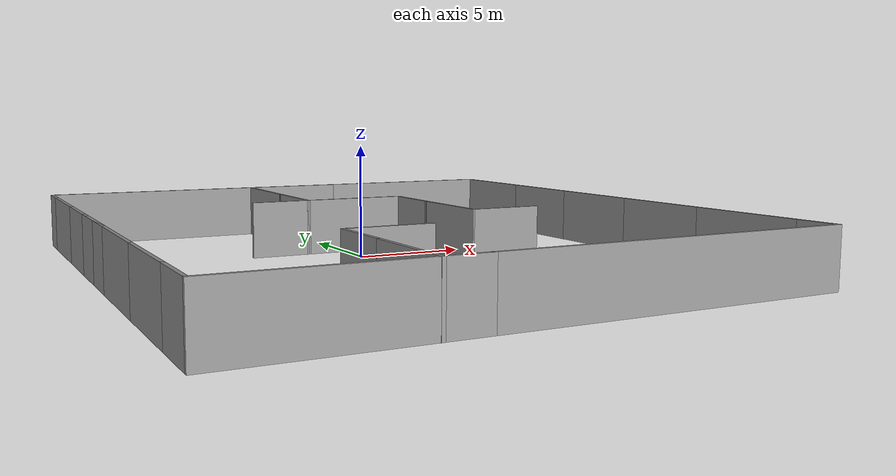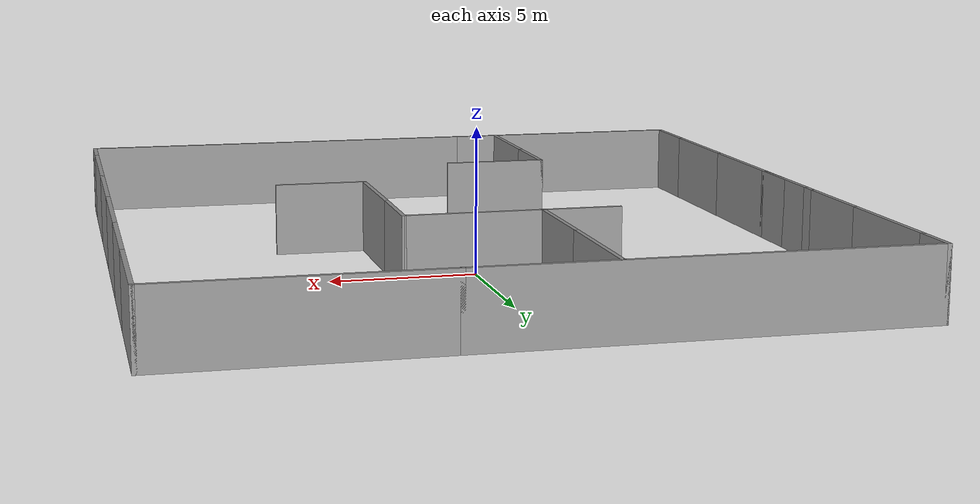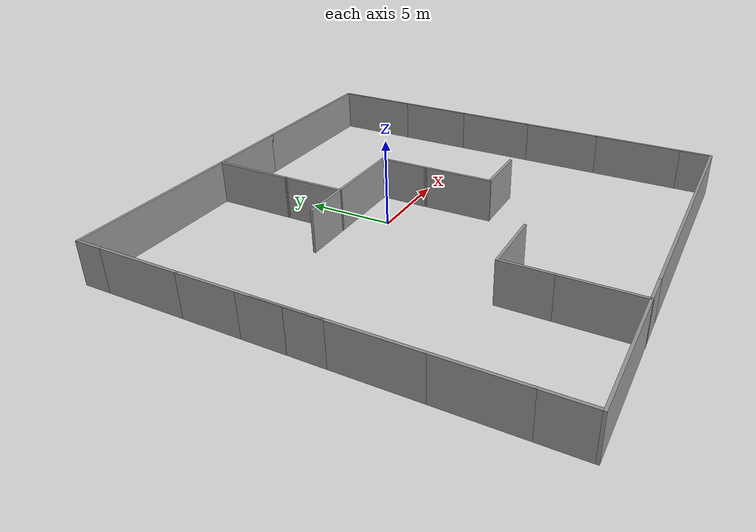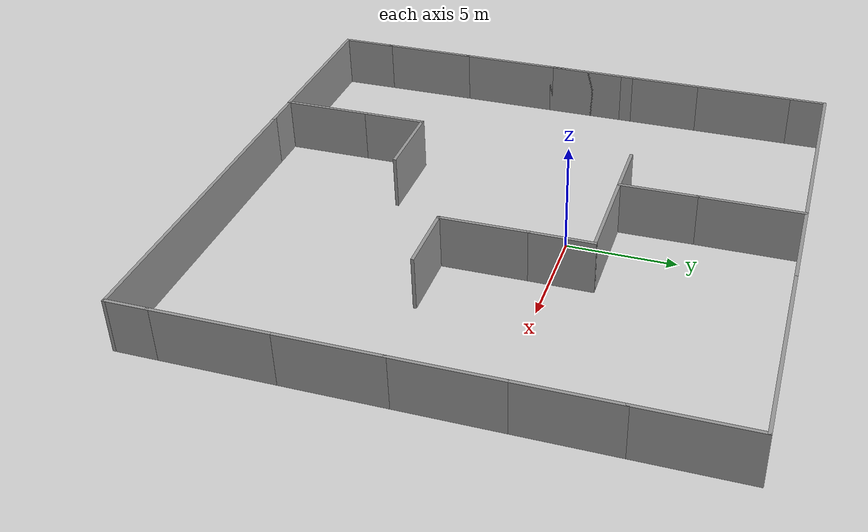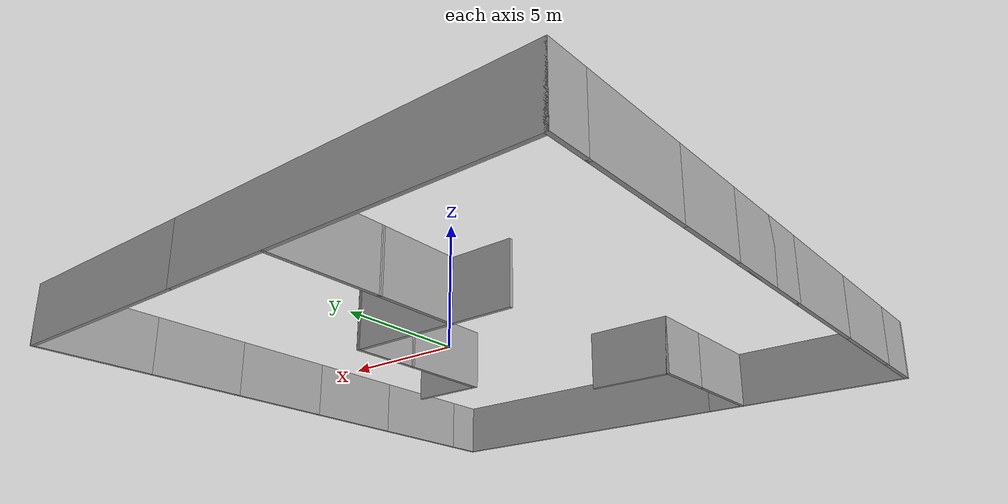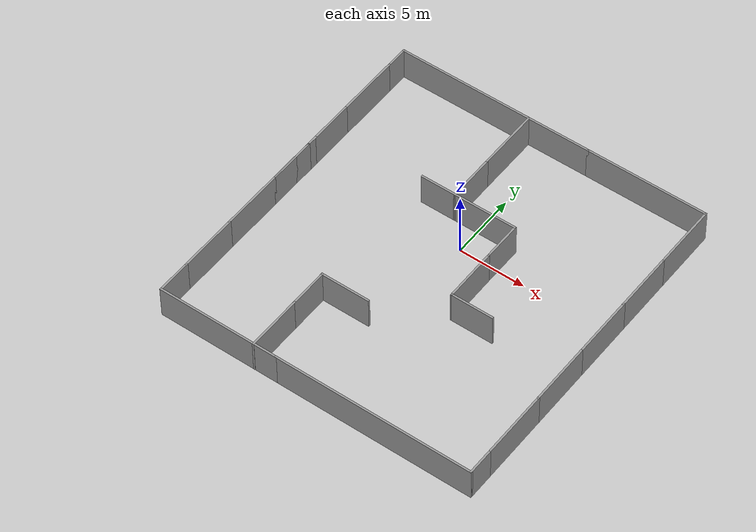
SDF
<?xml version='1.0'?>
<sdf version='1.7'>
  <model name='my_first_world'>
    <pose>0.005 -2.64 0 0 -0 0</pose>
    <link name='Wall_0'>
      <collision name='Wall_0_Collision'>
        <geometry>
          <box>
            <size>3.75 0.15 2.5</size>
          </box>
        </geometry>
        <pose>0 0 1.25 0 -0 0</pose>
      </collision>
      <visual name='Wall_0_Visual'>
        <pose>0 0 1.25 0 -0 0</pose>
        <geometry>
          <box>
            <size>3.75 0.15 2.5</size>
          </box>
        </geometry>
        <material>
          <script>
            <uri>file://media/materials/scripts/gazebo.material</uri>
            <name>Gazebo/Grey</name>
          </script>
          <ambient>1 1 1 1</ambient>
        </material>
        <meta>
          <layer>0</layer>
        </meta>
      </visual>
      <pose>-11.975 0.58 0 0 -0 -1.5708</pose>
    </link>
    <link name='Wall_1'>
      <collision name='Wall_1_Collision'>
        <geometry>
          <box>
            <size>4.5 0.15 2.5</size>
          </box>
        </geometry>
        <pose>0 0 1.25 0 -0 0</pose>
      </collision>
      <visual name='Wall_1_Visual'>
        <pose>0 0 1.25 0 -0 0</pose>
        <geometry>
          <box>
            <size>4.5 0.15 2.5</size>
          </box>
        </geometry>
        <material>
          <script>
            <uri>file://media/materials/scripts/gazebo.material</uri>
            <name>Gazebo/Grey</name>
          </script>
          <ambient>1 1 1 1</ambient>
        </material>
        <meta>
          <layer>0</layer>
        </meta>
      </visual>
      <pose>-11.975 0.955 0 0 -0 1.5708</pose>
    </link>
    <link name='Wall_10'>
      <collision name='Wall_10_Collision'>
        <geometry>
          <box>
            <size>2.5 0.15 2.5</size>
          </box>
        </geometry>
        <pose>0 0 1.25 0 -0 0</pose>
      </collision>
      <visual name='Wall_10_Visual'>
        <pose>0 0 1.25 0 -0 0</pose>
        <geometry>
          <box>
            <size>2.5 0.15 2.5</size>
          </box>
        </geometry>
        <material>
          <script>
            <uri>file://media/materials/scripts/gazebo.material</uri>
            <name>Gazebo/Grey</name>
          </script>
          <ambient>1 1 1 1</ambient>
        </material>
        <meta>
          <layer>0</layer>
        </meta>
      </visual>
      <pose>-11.975 -11.345 0 0 -0 -1.5708</pose>
    </link>
    <link name='Wall_12'>
      <collision name='Wall_12_Collision'>
        <geometry>
          <box>
            <size>3.5 0.15 2.5</size>
          </box>
        </geometry>
        <pose>0 0 1.25 0 -0 0</pose>
      </collision>
      <visual name='Wall_12_Visual'>
        <pose>0 0 1.25 0 -0 0</pose>
        <geometry>
          <box>
            <size>3.5 0.15 2.5</size>
          </box>
        </geometry>
        <material>
          <script>
            <uri>file://media/materials/scripts/gazebo.material</uri>
            <name>Gazebo/Grey</name>
          </script>
          <ambient>1 1 1 1</ambient>
        </material>
        <meta>
          <layer>0</layer>
        </meta>
      </visual>
      <pose>-11.975 4.805 0 0 -0 1.5708</pose>
    </link>
    <link name='Wall_14'>
      <collision name='Wall_14_Collision'>
        <geometry>
          <box>
            <size>4.75 0.15 2.5</size>
          </box>
        </geometry>
        <pose>0 0 1.25 0 -0 0</pose>
      </collision>
      <visual name='Wall_14_Visual'>
        <pose>0 0 1.25 0 -0 0</pose>
        <geometry>
          <box>
            <size>4.75 0.15 2.5</size>
          </box>
        </geometry>
        <material>
          <script>
            <uri>file://media/materials/scripts/gazebo.material</uri>
            <name>Gazebo/Grey</name>
          </script>
          <ambient>1 1 1 1</ambient>
        </material>
        <meta>
          <layer>0</layer>
        </meta>
      </visual>
      <pose>-11.975 8.78 0 0 -0 1.5708</pose>
    </link>
    <link name='Wall_16'>
      <collision name='Wall_16_Collision'>
        <geometry>
          <box>
            <size>1.75 0.15 2.5</size>
          </box>
        </geometry>
        <pose>0 0 1.25 0 -0 0</pose>
      </collision>
      <visual name='Wall_16_Visual'>
        <pose>0 0 1.25 0 -0 0</pose>
        <geometry>
          <box>
            <size>1.75 0.15 2.5</size>
          </box>
        </geometry>
        <material>
          <script>
            <uri>file://media/materials/scripts/gazebo.material</uri>
            <name>Gazebo/Grey</name>
          </script>
          <ambient>1 1 1 1</ambient>
        </material>
        <meta>
          <layer>0</layer>
        </meta>
      </visual>
      <pose>-11.975 11.88 0 0 -0 1.5708</pose>
    </link>
    <link name='Wall_17'>
      <collision name='Wall_17_Collision'>
        <geometry>
          <box>
            <size>15 0.15 2.5</size>
          </box>
        </geometry>
        <pose>0 0 1.25 0 -0 0</pose>
      </collision>
      <visual name='Wall_17_Visual'>
        <pose>0 0 1.25 0 -0 0</pose>
        <geometry>
          <box>
            <size>15 0.15 2.5</size>
          </box>
        </geometry>
        <material>
          <script>
            <uri>file://media/materials/scripts/gazebo.material</uri>
            <name>Gazebo/Grey</name>
          </script>
          <ambient>1 1 1 1</ambient>
        </material>
        <meta>
          <layer>0</layer>
        </meta>
      </visual>
      <pose>-4.55 12.68 0 0 -0 0</pose>
    </link>
    <link name='Wall_20'>
      <collision name='Wall_20_Collision'>
        <geometry>
          <box>
            <size>9.25 0.15 2.5</size>
          </box>
        </geometry>
        <pose>0 0 1.25 0 -0 0</pose>
      </collision>
      <visual name='Wall_20_Visual'>
        <pose>0 0 1.25 0 -0 0</pose>
        <geometry>
          <box>
            <size>9.25 0.15 2.5</size>
          </box>
        </geometry>
        <material>
          <script>
            <uri>file://media/materials/scripts/gazebo.material</uri>
            <name>Gazebo/Grey</name>
          </script>
          <ambient>1 1 1 1</ambient>
        </material>
        <meta>
          <layer>0</layer>
        </meta>
      </visual>
      <pose>7.425 12.68 0 0 -0 0</pose>
    </link>
    <link name='Wall_21'>
      <collision name='Wall_21_Collision'>
        <geometry>
          <box>
            <size>5 0.15 2.5</size>
          </box>
        </geometry>
        <pose>0 0 1.25 0 -0 0</pose>
      </collision>
      <visual name='Wall_21_Visual'>
        <pose>0 0 1.25 0 -0 0</pose>
        <geometry>
          <box>
            <size>5 0.15 2.5</size>
          </box>
        </geometry>
        <material>
          <script>
            <uri>file://media/materials/scripts/gazebo.material</uri>
            <name>Gazebo/Grey</name>
          </script>
          <ambient>1 1 1 1</ambient>
        </material>
        <meta>
          <layer>0</layer>
        </meta>
      </visual>
      <pose>11.975 10.255 0 0 -0 -1.5708</pose>
    </link>
    <link name='Wall_23'>
      <collision name='Wall_23_Collision'>
        <geometry>
          <box>
            <size>4.5 0.15 2.5</size>
          </box>
        </geometry>
        <pose>0 0 1.25 0 -0 0</pose>
      </collision>
      <visual name='Wall_23_Visual'>
        <pose>0 0 1.25 0 -0 0</pose>
        <geometry>
          <box>
            <size>4.5 0.15 2.5</size>
          </box>
        </geometry>
        <material>
          <script>
            <uri>file://media/materials/scripts/gazebo.material</uri>
            <name>Gazebo/Grey</name>
          </script>
          <ambient>1 1 1 1</ambient>
        </material>
        <meta>
          <layer>0</layer>
        </meta>
      </visual>
      <pose>11.975 5.655 0 0 -0 -1.5708</pose>
    </link>
    <link name='Wall_25'>
      <collision name='Wall_25_Collision'>
        <geometry>
          <box>
            <size>4.75 0.15 2.5</size>
          </box>
        </geometry>
        <pose>0 0 1.25 0 -0 0</pose>
      </collision>
      <visual name='Wall_25_Visual'>
        <pose>0 0 1.25 0 -0 0</pose>
        <geometry>
          <box>
            <size>4.75 0.15 2.5</size>
          </box>
        </geometry>
        <material>
          <script>
            <uri>file://media/materials/scripts/gazebo.material</uri>
            <name>Gazebo/Grey</name>
          </script>
          <ambient>1 1 1 1</ambient>
        </material>
        <meta>
          <layer>0</layer>
        </meta>
      </visual>
      <pose>11.975 1.18 0 0 -0 -1.5708</pose>
    </link>
    <link name='Wall_27'>
      <collision name='Wall_27_Collision'>
        <geometry>
          <box>
            <size>4.75 0.15 2.5</size>
          </box>
        </geometry>
        <pose>0 0 1.25 0 -0 0</pose>
      </collision>
      <visual name='Wall_27_Visual'>
        <pose>0 0 1.25 0 -0 0</pose>
        <geometry>
          <box>
            <size>4.75 0.15 2.5</size>
          </box>
        </geometry>
        <material>
          <script>
            <uri>file://media/materials/scripts/gazebo.material</uri>
            <name>Gazebo/Grey</name>
          </script>
          <ambient>1 1 1 1</ambient>
        </material>
        <meta>
          <layer>0</layer>
        </meta>
      </visual>
      <pose>11.975 -3.42 0 0 -0 -1.5708</pose>
    </link>
    <link name='Wall_29'>
      <collision name='Wall_29_Collision'>
        <geometry>
          <box>
            <size>5.25 0.15 2.5</size>
          </box>
        </geometry>
        <pose>0 0 1.25 0 -0 0</pose>
      </collision>
      <visual name='Wall_29_Visual'>
        <pose>0 0 1.25 0 -0 0</pose>
        <geometry>
          <box>
            <size>5.25 0.15 2.5</size>
          </box>
        </geometry>
        <material>
          <script>
            <uri>file://media/materials/scripts/gazebo.material</uri>
            <name>Gazebo/Grey</name>
          </script>
          <ambient>1 1 1 1</ambient>
        </material>
        <meta>
          <layer>0</layer>
        </meta>
      </visual>
      <pose>11.975 -8.27 0 0 -0 -1.5708</pose>
    </link>
    <link name='Wall_31'>
      <collision name='Wall_31_Collision'>
        <geometry>
          <box>
            <size>2 0.15 2.5</size>
          </box>
        </geometry>
        <pose>0 0 1.25 0 -0 0</pose>
      </collision>
      <visual name='Wall_31_Visual'>
        <pose>0 0 1.25 0 -0 0</pose>
        <geometry>
          <box>
            <size>2 0.15 2.5</size>
          </box>
        </geometry>
        <material>
          <script>
            <uri>file://media/materials/scripts/gazebo.material</uri>
            <name>Gazebo/Grey</name>
          </script>
          <ambient>1 1 1 1</ambient>
        </material>
        <meta>
          <layer>0</layer>
        </meta>
      </visual>
      <pose>11.975 -11.745 0 0 -0 -1.5708</pose>
    </link>
    <link name='Wall_32'>
      <collision name='Wall_32_Collision'>
        <geometry>
          <box>
            <size>15 0.15 2.5</size>
          </box>
        </geometry>
        <pose>0 0 1.25 0 -0 0</pose>
      </collision>
      <visual name='Wall_32_Visual'>
        <pose>0 0 1.25 0 -0 0</pose>
        <geometry>
          <box>
            <size>15 0.15 2.5</size>
          </box>
        </geometry>
        <material>
          <script>
            <uri>file://media/materials/scripts/gazebo.material</uri>
            <name>Gazebo/Grey</name>
          </script>
          <ambient>1 1 1 1</ambient>
        </material>
        <meta>
          <layer>0</layer>
        </meta>
      </visual>
      <pose>4.55 -12.67 0 0 -0 3.14159</pose>
    </link>
    <link name='Wall_34'>
      <collision name='Wall_34_Collision'>
        <geometry>
          <box>
            <size>9.25 0.15 2.5</size>
          </box>
        </geometry>
        <pose>0 0 1.25 0 -0 0</pose>
      </collision>
      <visual name='Wall_34_Visual'>
        <pose>0 0 1.25 0 -0 0</pose>
        <geometry>
          <box>
            <size>9.25 0.15 2.5</size>
          </box>
        </geometry>
        <material>
          <script>
            <uri>file://media/materials/scripts/gazebo.material</uri>
            <name>Gazebo/Grey</name>
          </script>
          <ambient>1 1 1 1</ambient>
        </material>
        <meta>
          <layer>0</layer>
        </meta>
      </visual>
      <pose>-7.425 -12.67 0 0 -0 3.14159</pose>
    </link>
    <link name='Wall_36'>
      <collision name='Wall_36_Collision'>
        <geometry>
          <box>
            <size>4.75 0.15 2.5</size>
          </box>
        </geometry>
        <pose>0 0 1.25 0 -0 0</pose>
      </collision>
      <visual name='Wall_36_Visual'>
        <pose>0 0 1.25 0 -0 0</pose>
        <geometry>
          <box>
            <size>4.75 0.15 2.5</size>
          </box>
        </geometry>
        <material>
          <script>
            <uri>file://media/materials/scripts/gazebo.material</uri>
            <name>Gazebo/Grey</name>
          </script>
          <ambient>1 1 1 1</ambient>
        </material>
        <meta>
          <layer>0</layer>
        </meta>
      </visual>
      <pose>-1.825 10.35 0 0 -0 -1.5708</pose>
    </link>
    <link name='Wall_38'>
      <collision name='Wall_38_Collision'>
        <geometry>
          <box>
            <size>3.66006 0.15 2.5</size>
          </box>
        </geometry>
        <pose>0 0 1.25 0 -0 0</pose>
      </collision>
      <visual name='Wall_38_Visual'>
        <pose>0 0 1.25 0 -0 0</pose>
        <geometry>
          <box>
            <size>3.66006 0.15 2.5</size>
          </box>
        </geometry>
        <material>
          <script>
            <uri>file://media/materials/scripts/gazebo.material</uri>
            <name>Gazebo/Grey</name>
          </script>
          <ambient>1 1 1 1</ambient>
        </material>
        <meta>
          <layer>0</layer>
        </meta>
      </visual>
      <pose>-1.815 6.295 0 0 -0 -1.5651</pose>
    </link>
    <link name='Wall_40'>
      <collision name='Wall_40_Collision'>
        <geometry>
          <box>
            <size>2.75 0.15 2.5</size>
          </box>
        </geometry>
        <pose>0 0 1.25 0 -0 0</pose>
      </collision>
      <visual name='Wall_40_Visual'>
        <pose>0 0 1.25 0 -0 0</pose>
        <geometry>
          <box>
            <size>2.75 0.15 2.5</size>
          </box>
        </geometry>
        <material>
          <script>
            <uri>file://media/materials/scripts/gazebo.material</uri>
            <name>Gazebo/Grey</name>
          </script>
          <ambient>1 1 1 1</ambient>
        </material>
        <meta>
          <layer>0</layer>
        </meta>
      </visual>
      <pose>-3.105 4.54 0 0 -0 3.14159</pose>
    </link>
    <link name='Wall_42'>
      <collision name='Wall_42_Collision'>
        <geometry>
          <box>
            <size>4.83001 0.15 2.5</size>
          </box>
        </geometry>
        <pose>0 0 1.25 0 -0 0</pose>
      </collision>
      <visual name='Wall_42_Visual'>
        <pose>0 0 1.25 0 -0 0</pose>
        <geometry>
          <box>
            <size>4.83001 0.15 2.5</size>
          </box>
        </geometry>
        <material>
          <script>
            <uri>file://media/materials/scripts/gazebo.material</uri>
            <name>Gazebo/Grey</name>
          </script>
          <ambient>1 1 1 1</ambient>
        </material>
        <meta>
          <layer>0</layer>
        </meta>
      </visual>
      <pose>0.535 4.545 0 0 -0 0.002137</pose>
    </link>
    <link name='Wall_44'>
      <collision name='Wall_44_Collision'>
        <geometry>
          <box>
            <size>3 0.15 2.5</size>
          </box>
        </geometry>
        <pose>0 0 1.25 0 -0 0</pose>
      </collision>
      <visual name='Wall_44_Visual'>
        <pose>0 0 1.25 0 -0 0</pose>
        <geometry>
          <box>
            <size>3 0.15 2.5</size>
          </box>
        </geometry>
        <material>
          <script>
            <uri>file://media/materials/scripts/gazebo.material</uri>
            <name>Gazebo/Grey</name>
          </script>
          <ambient>1 1 1 1</ambient>
        </material>
        <meta>
          <layer>0</layer>
        </meta>
      </visual>
      <pose>2.885 3.125 0 0 -0 -1.5708</pose>
    </link>
    <link name='Wall_46'>
      <collision name='Wall_46_Collision'>
        <geometry>
          <box>
            <size>4.10011 0.15 2.5</size>
          </box>
        </geometry>
        <pose>0 0 1.25 0 -0 0</pose>
      </collision>
      <visual name='Wall_46_Visual'>
        <pose>0 0 1.25 0 -0 0</pose>
        <geometry>
          <box>
            <size>4.10011 0.15 2.5</size>
          </box>
        </geometry>
        <material>
          <script>
            <uri>file://media/materials/scripts/gazebo.material</uri>
            <name>Gazebo/Grey</name>
          </script>
          <ambient>1 1 1 1</ambient>
        </material>
        <meta>
          <layer>0</layer>
        </meta>
      </visual>
      <pose>2.9 -0.275 0 0 -0 -1.5632</pose>
    </link>
    <link name='Wall_48'>
      <collision name='Wall_48_Collision'>
        <geometry>
          <box>
            <size>3.25 0.15 2.5</size>
          </box>
        </geometry>
        <pose>0 0 1.25 0 -0 0</pose>
      </collision>
      <visual name='Wall_48_Visual'>
        <pose>0 0 1.25 0 -0 0</pose>
        <geometry>
          <box>
            <size>3.25 0.15 2.5</size>
          </box>
        </geometry>
        <material>
          <script>
            <uri>file://media/materials/scripts/gazebo.material</uri>
            <name>Gazebo/Grey</name>
          </script>
          <ambient>1 1 1 1</ambient>
        </material>
        <meta>
          <layer>0</layer>
        </meta>
      </visual>
      <pose>4.475 -2.25 0 0 -0 0</pose>
    </link>
    <link name='Wall_51'>
      <collision name='Wall_51_Collision'>
        <geometry>
          <box>
            <size>4.25 0.15 2.5</size>
          </box>
        </geometry>
        <pose>0 0 1.25 0 -0 0</pose>
      </collision>
      <visual name='Wall_51_Visual'>
        <pose>0 0 1.25 0 -0 0</pose>
        <geometry>
          <box>
            <size>4.25 0.15 2.5</size>
          </box>
        </geometry>
        <material>
          <script>
            <uri>file://media/materials/scripts/gazebo.material</uri>
            <name>Gazebo/Grey</name>
          </script>
          <ambient>1 1 1 1</ambient>
        </material>
        <meta>
          <layer>0</layer>
        </meta>
      </visual>
      <pose>-4.615 -10.63 0 0 -0 1.5708</pose>
    </link>
    <link name='Wall_53'>
      <collision name='Wall_53_Collision'>
        <geometry>
          <box>
            <size>3 0.15 2.5</size>
          </box>
        </geometry>
        <pose>0 0 1.25 0 -0 0</pose>
      </collision>
      <visual name='Wall_53_Visual'>
        <pose>0 0 1.25 0 -0 0</pose>
        <geometry>
          <box>
            <size>3 0.15 2.5</size>
          </box>
        </geometry>
        <material>
          <script>
            <uri>file://media/materials/scripts/gazebo.material</uri>
            <name>Gazebo/Grey</name>
          </script>
          <ambient>1 1 1 1</ambient>
        </material>
        <meta>
          <layer>0</layer>
        </meta>
      </visual>
      <pose>-4.615 -7.155 0 0 -0 1.5708</pose>
    </link>
    <link name='Wall_55'>
      <collision name='Wall_55_Collision'>
        <geometry>
          <box>
            <size>3.75 0.15 2.5</size>
          </box>
        </geometry>
        <pose>0 0 1.25 0 -0 0</pose>
      </collision>
      <visual name='Wall_55_Visual'>
        <pose>0 0 1.25 0 -0 0</pose>
        <geometry>
          <box>
            <size>3.75 0.15 2.5</size>
          </box>
        </geometry>
        <material>
          <script>
            <uri>file://media/materials/scripts/gazebo.material</uri>
            <name>Gazebo/Grey</name>
          </script>
          <ambient>1 1 1 1</ambient>
        </material>
        <meta>
          <layer>0</layer>
        </meta>
      </visual>
      <pose>-2.815 -5.73 0 0 -0 0</pose>
    </link>
    <link name='Wall_6'>
      <collision name='Wall_6_Collision'>
        <geometry>
          <box>
            <size>4.75 0.15 2.5</size>
          </box>
        </geometry>
        <pose>0 0 1.25 0 -0 0</pose>
      </collision>
      <visual name='Wall_6_Visual'>
        <pose>0 0 1.25 0 -0 0</pose>
        <geometry>
          <box>
            <size>4.75 0.15 2.5</size>
          </box>
        </geometry>
        <material>
          <script>
            <uri>file://media/materials/scripts/gazebo.material</uri>
            <name>Gazebo/Grey</name>
          </script>
          <ambient>1 1 1 1</ambient>
        </material>
        <meta>
          <layer>0</layer>
        </meta>
      </visual>
      <pose>-11.975 -3.52 0 0 -0 -1.5708</pose>
    </link>
    <link name='Wall_8'>
      <collision name='Wall_8_Collision'>
        <geometry>
          <box>
            <size>4.5 0.15 2.5</size>
          </box>
        </geometry>
        <pose>0 0 1.25 0 -0 0</pose>
      </collision>
      <visual name='Wall_8_Visual'>
        <pose>0 0 1.25 0 -0 0</pose>
        <geometry>
          <box>
            <size>4.5 0.15 2.5</size>
          </box>
        </geometry>
        <material>
          <script>
            <uri>file://media/materials/scripts/gazebo.material</uri>
            <name>Gazebo/Grey</name>
          </script>
          <ambient>1 1 1 1</ambient>
        </material>
        <meta>
          <layer>0</layer>
        </meta>
      </visual>
      <pose>-11.975 -7.995 0 0 -0 -1.5708</pose>
    </link>
    <static>1</static>
  </model>
</sdf>
